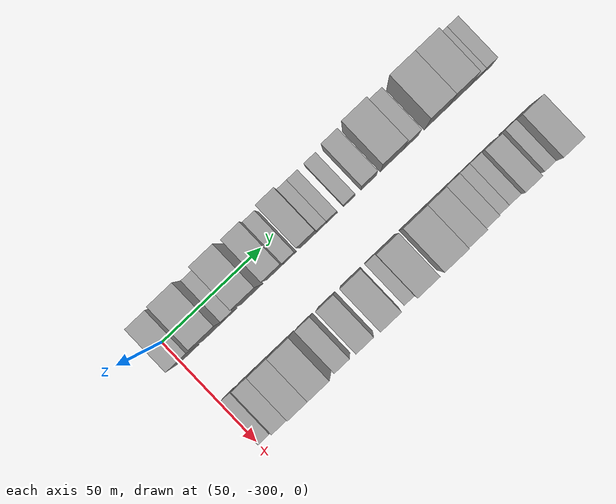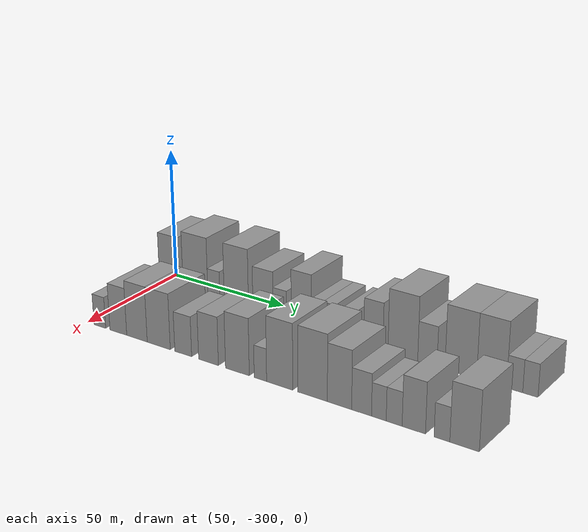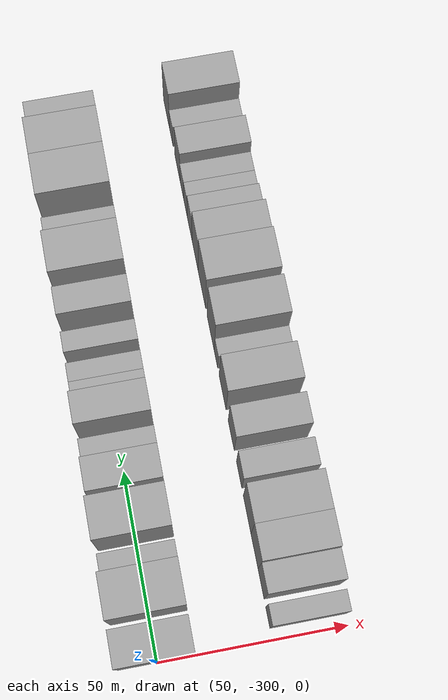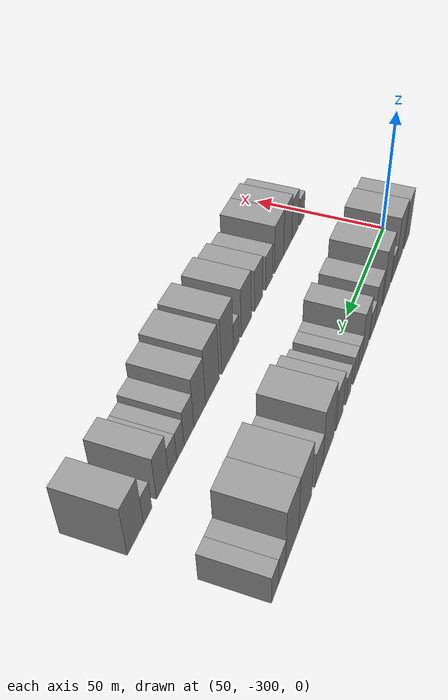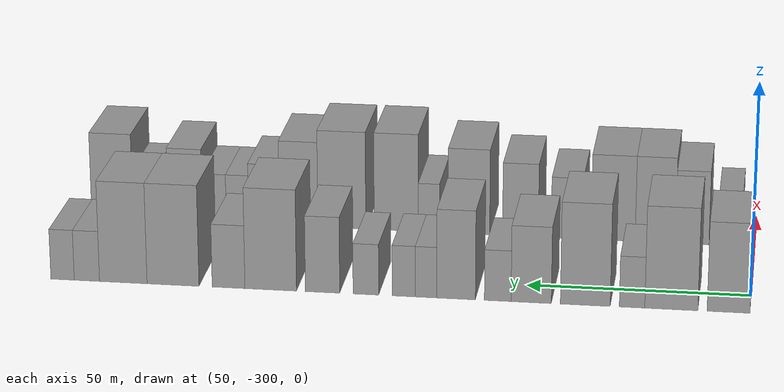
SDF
<sdf version="1.6">
 <world name="default">
  <model name="building_1">
   <static>1</static>
   <pose>50.0000 -295.3175 0 0.000000 0.000000 0.000000</pose>
   <link name="link">
    <pose>0 0 10.50 0 0 0</pose>
    <collision name="collision"><geometry><box><size>20.0000 9.3650 21.0000</size></box></geometry></collision>
    <visual name="visual">
     <cast_shadows>0</cast_shadows>
     <geometry><box><size>20.0000 9.3650 21.0000</size></box></geometry>
     <material>
      <script>
       <uri>model://grey_wall/materials/scripts</uri>
       <uri>model://grey_wall/materials/textures</uri>
       <name>vrc/grey_wall</name>
      </script>
     </material>
    </visual>
   </link>
  </model>
  <model name="building_2">
   <static>1</static>
   <pose>50.0000 -282.8107 0 0.000000 0.000000 0.000000</pose>
   <link name="link">
    <pose>0 0 12.00 0 0 0</pose>
    <collision name="collision"><geometry><box><size>20.0000 11.6486 24.0000</size></box></geometry></collision>
    <visual name="visual">
     <cast_shadows>0</cast_shadows>
     <geometry><box><size>20.0000 11.6486 24.0000</size></box></geometry>
     <material>
      <script>
       <uri>model://grey_wall/materials/scripts</uri>
       <uri>model://grey_wall/materials/textures</uri>
       <name>vrc/grey_wall</name>
      </script>
     </material>
    </visual>
   </link>
  </model>
  <model name="building_3">
   <static>1</static>
   <pose>50.0000 -274.1890 0 0.000000 0.000000 0.000000</pose>
   <link name="link">
    <pose>0 0 6.00 0 0 0</pose>
    <collision name="collision"><geometry><box><size>20.0000 5.5949 12.0000</size></box></geometry></collision>
    <visual name="visual">
     <cast_shadows>0</cast_shadows>
     <geometry><box><size>20.0000 5.5949 12.0000</size></box></geometry>
     <material>
      <script>
       <uri>model://grey_wall/materials/scripts</uri>
       <uri>model://grey_wall/materials/textures</uri>
       <name>vrc/grey_wall</name>
      </script>
     </material>
    </visual>
   </link>
  </model>
  <model name="building_4">
   <static>1</static>
   <pose>50.0000 -263.8913 0 0.000000 0.000000 0.000000</pose>
   <link name="link">
    <pose>0 0 12.00 0 0 0</pose>
    <collision name="collision"><geometry><box><size>20.0000 11.0005 24.0000</size></box></geometry></collision>
    <visual name="visual">
     <cast_shadows>0</cast_shadows>
     <geometry><box><size>20.0000 11.0005 24.0000</size></box></geometry>
     <material>
      <script>
       <uri>model://grey_wall/materials/scripts</uri>
       <uri>model://grey_wall/materials/textures</uri>
       <name>vrc/grey_wall</name>
      </script>
     </material>
    </visual>
   </link>
  </model>
  <model name="building_5">
   <static>1</static>
   <pose>50.0000 -251.9345 0 0.000000 0.000000 0.000000</pose>
   <link name="link">
    <pose>0 0 9.00 0 0 0</pose>
    <collision name="collision"><geometry><box><size>20.0000 8.9130 18.0000</size></box></geometry></collision>
    <visual name="visual">
     <cast_shadows>0</cast_shadows>
     <geometry><box><size>20.0000 8.9130 18.0000</size></box></geometry>
     <material>
      <script>
       <uri>model://grey_wall/materials/scripts</uri>
       <uri>model://grey_wall/materials/textures</uri>
       <name>vrc/grey_wall</name>
      </script>
     </material>
    </visual>
   </link>
  </model>
  <model name="building_6">
   <static>1</static>
   <pose>50.0000 -244.5130 0 0.000000 0.000000 0.000000</pose>
   <link name="link">
    <pose>0 0 6.00 0 0 0</pose>
    <collision name="collision"><geometry><box><size>20.0000 5.9301 12.0000</size></box></geometry></collision>
    <visual name="visual">
     <cast_shadows>0</cast_shadows>
     <geometry><box><size>20.0000 5.9301 12.0000</size></box></geometry>
     <material>
      <script>
       <uri>model://grey_wall/materials/scripts</uri>
       <uri>model://grey_wall/materials/textures</uri>
       <name>vrc/grey_wall</name>
      </script>
     </material>
    </visual>
   </link>
  </model>
  <model name="building_7">
   <static>1</static>
   <pose>50.0000 -235.2398 0 0.000000 0.000000 0.000000</pose>
   <link name="link">
    <pose>0 0 10.50 0 0 0</pose>
    <collision name="collision"><geometry><box><size>20.0000 8.6164 21.0000</size></box></geometry></collision>
    <visual name="visual">
     <cast_shadows>0</cast_shadows>
     <geometry><box><size>20.0000 8.6164 21.0000</size></box></geometry>
     <material>
      <script>
       <uri>model://grey_wall/materials/scripts</uri>
       <uri>model://grey_wall/materials/textures</uri>
       <name>vrc/grey_wall</name>
      </script>
     </material>
    </visual>
   </link>
  </model>
  <model name="building_8">
   <static>1</static>
   <pose>50.0000 -228.5288 0 0.000000 0.000000 0.000000</pose>
   <link name="link">
    <pose>0 0 6.00 0 0 0</pose>
    <collision name="collision"><geometry><box><size>20.0000 4.8055 12.0000</size></box></geometry></collision>
    <visual name="visual">
     <cast_shadows>0</cast_shadows>
     <geometry><box><size>20.0000 4.8055 12.0000</size></box></geometry>
     <material>
      <script>
       <uri>model://grey_wall/materials/scripts</uri>
       <uri>model://grey_wall/materials/textures</uri>
       <name>vrc/grey_wall</name>
      </script>
     </material>
    </visual>
   </link>
  </model>
  <model name="building_9">
   <static>1</static>
   <pose>50.0000 -223.5332 0 0.000000 0.000000 0.000000</pose>
   <link name="link">
    <pose>0 0 6.00 0 0 0</pose>
    <collision name="collision"><geometry><box><size>20.0000 5.1856 12.0000</size></box></geometry></collision>
    <visual name="visual">
     <cast_shadows>0</cast_shadows>
     <geometry><box><size>20.0000 5.1856 12.0000</size></box></geometry>
     <material>
      <script>
       <uri>model://grey_wall/materials/scripts</uri>
       <uri>model://grey_wall/materials/textures</uri>
       <name>vrc/grey_wall</name>
      </script>
     </material>
    </visual>
   </link>
  </model>
  <model name="building_10">
   <static>1</static>
   <pose>50.0000 -215.0682 0 0.000000 0.000000 0.000000</pose>
   <link name="link">
    <pose>0 0 6.00 0 0 0</pose>
    <collision name="collision"><geometry><box><size>20.0000 5.7443 12.0000</size></box></geometry></collision>
    <visual name="visual">
     <cast_shadows>0</cast_shadows>
     <geometry><box><size>20.0000 5.7443 12.0000</size></box></geometry>
     <material>
      <script>
       <uri>model://grey_wall/materials/scripts</uri>
       <uri>model://grey_wall/materials/textures</uri>
       <name>vrc/grey_wall</name>
      </script>
     </material>
    </visual>
   </link>
  </model>
  <model name="building_11">
   <static>1</static>
   <pose>50.0000 -205.3281 0 0.000000 0.000000 0.000000</pose>
   <link name="link">
    <pose>0 0 9.00 0 0 0</pose>
    <collision name="collision"><geometry><box><size>20.0000 7.7359 18.0000</size></box></geometry></collision>
    <visual name="visual">
     <cast_shadows>0</cast_shadows>
     <geometry><box><size>20.0000 7.7359 18.0000</size></box></geometry>
     <material>
      <script>
       <uri>model://grey_wall/materials/scripts</uri>
       <uri>model://grey_wall/materials/textures</uri>
       <name>vrc/grey_wall</name>
      </script>
     </material>
    </visual>
   </link>
  </model>
  <model name="building_12">
   <static>1</static>
   <pose>50.0000 -193.6278 0 0.000000 0.000000 0.000000</pose>
   <link name="link">
    <pose>0 0 12.00 0 0 0</pose>
    <collision name="collision"><geometry><box><size>20.0000 11.6648 24.0000</size></box></geometry></collision>
    <visual name="visual">
     <cast_shadows>0</cast_shadows>
     <geometry><box><size>20.0000 11.6648 24.0000</size></box></geometry>
     <material>
      <script>
       <uri>model://grey_wall/materials/scripts</uri>
       <uri>model://grey_wall/materials/textures</uri>
       <name>vrc/grey_wall</name>
      </script>
     </material>
    </visual>
   </link>
  </model>
  <model name="building_13">
   <static>1</static>
   <pose>50.0000 -184.0830 0 0.000000 0.000000 0.000000</pose>
   <link name="link">
    <pose>0 0 7.50 0 0 0</pose>
    <collision name="collision"><geometry><box><size>20.0000 7.4248 15.0000</size></box></geometry></collision>
    <visual name="visual">
     <cast_shadows>0</cast_shadows>
     <geometry><box><size>20.0000 7.4248 15.0000</size></box></geometry>
     <material>
      <script>
       <uri>model://grey_wall/materials/scripts</uri>
       <uri>model://grey_wall/materials/textures</uri>
       <name>vrc/grey_wall</name>
      </script>
     </material>
    </visual>
   </link>
  </model>
  <model name="building_14">
   <static>1</static>
   <pose>50.0000 -171.4516 0 0.000000 0.000000 0.000000</pose>
   <link name="link">
    <pose>0 0 12.00 0 0 0</pose>
    <collision name="collision"><geometry><box><size>20.0000 11.8380 24.0000</size></box></geometry></collision>
    <visual name="visual">
     <cast_shadows>0</cast_shadows>
     <geometry><box><size>20.0000 11.8380 24.0000</size></box></geometry>
     <material>
      <script>
       <uri>model://grey_wall/materials/scripts</uri>
       <uri>model://grey_wall/materials/textures</uri>
       <name>vrc/grey_wall</name>
      </script>
     </material>
    </visual>
   </link>
  </model>
  <model name="building_15">
   <static>1</static>
   <pose>50.0000 -160.0924 0 0.000000 0.000000 0.000000</pose>
   <link name="link">
    <pose>0 0 12.00 0 0 0</pose>
    <collision name="collision"><geometry><box><size>20.0000 10.8804 24.0000</size></box></geometry></collision>
    <visual name="visual">
     <cast_shadows>0</cast_shadows>
     <geometry><box><size>20.0000 10.8804 24.0000</size></box></geometry>
     <material>
      <script>
       <uri>model://grey_wall/materials/scripts</uri>
       <uri>model://grey_wall/materials/textures</uri>
       <name>vrc/grey_wall</name>
      </script>
     </material>
    </visual>
   </link>
  </model>
  <model name="building_16">
   <static>1</static>
   <pose>50.0000 -151.7578 0 0.000000 0.000000 0.000000</pose>
   <link name="link">
    <pose>0 0 6.00 0 0 0</pose>
    <collision name="collision"><geometry><box><size>20.0000 5.7887 12.0000</size></box></geometry></collision>
    <visual name="visual">
     <cast_shadows>0</cast_shadows>
     <geometry><box><size>20.0000 5.7887 12.0000</size></box></geometry>
     <material>
      <script>
       <uri>model://grey_wall/materials/scripts</uri>
       <uri>model://grey_wall/materials/textures</uri>
       <name>vrc/grey_wall</name>
      </script>
     </material>
    </visual>
   </link>
  </model>
  <model name="building_17">
   <static>1</static>
   <pose>50.0000 -146.1758 0 0.000000 0.000000 0.000000</pose>
   <link name="link">
    <pose>0 0 6.00 0 0 0</pose>
    <collision name="collision"><geometry><box><size>20.0000 5.3753 12.0000</size></box></geometry></collision>
    <visual name="visual">
     <cast_shadows>0</cast_shadows>
     <geometry><box><size>20.0000 5.3753 12.0000</size></box></geometry>
     <material>
      <script>
       <uri>model://grey_wall/materials/scripts</uri>
       <uri>model://grey_wall/materials/textures</uri>
       <name>vrc/grey_wall</name>
      </script>
     </material>
    </visual>
   </link>
  </model>
  <model name="building_69">
   <static>1</static>
   <pose>90.0000 -294.2524 0 0.000000 0.000000 0.000000</pose>
   <link name="link">
    <pose>0 0 6.00 0 0 0</pose>
    <collision name="collision"><geometry><box><size>20.0000 5.4952 12.0000</size></box></geometry></collision>
    <visual name="visual">
     <cast_shadows>0</cast_shadows>
     <geometry><box><size>20.0000 5.4952 12.0000</size></box></geometry>
     <material>
      <script>
       <uri>model://grey_wall/materials/scripts</uri>
       <uri>model://grey_wall/materials/textures</uri>
       <name>vrc/grey_wall</name>
      </script>
     </material>
    </visual>
   </link>
  </model>
  <model name="building_70">
   <static>1</static>
   <pose>90.0000 -285.6270 0 0.000000 0.000000 0.000000</pose>
   <link name="link">
    <pose>0 0 9.00 0 0 0</pose>
    <collision name="collision"><geometry><box><size>20.0000 7.7557 18.0000</size></box></geometry></collision>
    <visual name="visual">
     <cast_shadows>0</cast_shadows>
     <geometry><box><size>20.0000 7.7557 18.0000</size></box></geometry>
     <material>
      <script>
       <uri>model://grey_wall/materials/scripts</uri>
       <uri>model://grey_wall/materials/textures</uri>
       <name>vrc/grey_wall</name>
      </script>
     </material>
    </visual>
   </link>
  </model>
  <model name="building_71">
   <static>1</static>
   <pose>90.0000 -277.0891 0 0.000000 0.000000 0.000000</pose>
   <link name="link">
    <pose>0 0 10.50 0 0 0</pose>
    <collision name="collision"><geometry><box><size>20.0000 9.3201 21.0000</size></box></geometry></collision>
    <visual name="visual">
     <cast_shadows>0</cast_shadows>
     <geometry><box><size>20.0000 9.3201 21.0000</size></box></geometry>
     <material>
      <script>
       <uri>model://grey_wall/materials/scripts</uri>
       <uri>model://grey_wall/materials/textures</uri>
       <name>vrc/grey_wall</name>
      </script>
     </material>
    </visual>
   </link>
  </model>
  <model name="building_72">
   <static>1</static>
   <pose>90.0000 -267.3088 0 0.000000 0.000000 0.000000</pose>
   <link name="link">
    <pose>0 0 10.50 0 0 0</pose>
    <collision name="collision"><geometry><box><size>20.0000 10.2406 21.0000</size></box></geometry></collision>
    <visual name="visual">
     <cast_shadows>0</cast_shadows>
     <geometry><box><size>20.0000 10.2406 21.0000</size></box></geometry>
     <material>
      <script>
       <uri>model://grey_wall/materials/scripts</uri>
       <uri>model://grey_wall/materials/textures</uri>
       <name>vrc/grey_wall</name>
      </script>
     </material>
    </visual>
   </link>
  </model>
  <model name="building_73">
   <static>1</static>
   <pose>90.0000 -256.5324 0 0.000000 0.000000 0.000000</pose>
   <link name="link">
    <pose>0 0 7.50 0 0 0</pose>
    <collision name="collision"><geometry><box><size>20.0000 7.3120 15.0000</size></box></geometry></collision>
    <visual name="visual">
     <cast_shadows>0</cast_shadows>
     <geometry><box><size>20.0000 7.3120 15.0000</size></box></geometry>
     <material>
      <script>
       <uri>model://grey_wall/materials/scripts</uri>
       <uri>model://grey_wall/materials/textures</uri>
       <name>vrc/grey_wall</name>
      </script>
     </material>
    </visual>
   </link>
  </model>
  <model name="building_74">
   <static>1</static>
   <pose>90.0000 -245.6885 0 0.000000 0.000000 0.000000</pose>
   <link name="link">
    <pose>0 0 9.00 0 0 0</pose>
    <collision name="collision"><geometry><box><size>20.0000 8.3760 18.0000</size></box></geometry></collision>
    <visual name="visual">
     <cast_shadows>0</cast_shadows>
     <geometry><box><size>20.0000 8.3760 18.0000</size></box></geometry>
     <material>
      <script>
       <uri>model://grey_wall/materials/scripts</uri>
       <uri>model://grey_wall/materials/textures</uri>
       <name>vrc/grey_wall</name>
      </script>
     </material>
    </visual>
   </link>
  </model>
  <model name="building_75">
   <static>1</static>
   <pose>90.0000 -233.5897 0 0.000000 0.000000 0.000000</pose>
   <link name="link">
    <pose>0 0 10.50 0 0 0</pose>
    <collision name="collision"><geometry><box><size>20.0000 9.8216 21.0000</size></box></geometry></collision>
    <visual name="visual">
     <cast_shadows>0</cast_shadows>
     <geometry><box><size>20.0000 9.8216 21.0000</size></box></geometry>
     <material>
      <script>
       <uri>model://grey_wall/materials/scripts</uri>
       <uri>model://grey_wall/materials/textures</uri>
       <name>vrc/grey_wall</name>
      </script>
     </material>
    </visual>
   </link>
  </model>
  <model name="building_76">
   <static>1</static>
   <pose>90.0000 -224.1726 0 0.000000 0.000000 0.000000</pose>
   <link name="link">
    <pose>0 0 6.00 0 0 0</pose>
    <collision name="collision"><geometry><box><size>20.0000 5.0125 12.0000</size></box></geometry></collision>
    <visual name="visual">
     <cast_shadows>0</cast_shadows>
     <geometry><box><size>20.0000 5.0125 12.0000</size></box></geometry>
     <material>
      <script>
       <uri>model://grey_wall/materials/scripts</uri>
       <uri>model://grey_wall/materials/textures</uri>
       <name>vrc/grey_wall</name>
      </script>
     </material>
    </visual>
   </link>
  </model>
  <model name="building_77">
   <static>1</static>
   <pose>90.0000 -216.4661 0 0.000000 0.000000 0.000000</pose>
   <link name="link">
    <pose>0 0 12.00 0 0 0</pose>
    <collision name="collision"><geometry><box><size>20.0000 10.4005 24.0000</size></box></geometry></collision>
    <visual name="visual">
     <cast_shadows>0</cast_shadows>
     <geometry><box><size>20.0000 10.4005 24.0000</size></box></geometry>
     <material>
      <script>
       <uri>model://grey_wall/materials/scripts</uri>
       <uri>model://grey_wall/materials/textures</uri>
       <name>vrc/grey_wall</name>
      </script>
     </material>
    </visual>
   </link>
  </model>
  <model name="building_78">
   <static>1</static>
   <pose>90.0000 -203.5819 0 0.000000 0.000000 0.000000</pose>
   <link name="link">
    <pose>0 0 12.00 0 0 0</pose>
    <collision name="collision"><geometry><box><size>20.0000 11.3679 24.0000</size></box></geometry></collision>
    <visual name="visual">
     <cast_shadows>0</cast_shadows>
     <geometry><box><size>20.0000 11.3679 24.0000</size></box></geometry>
     <material>
      <script>
       <uri>model://grey_wall/materials/scripts</uri>
       <uri>model://grey_wall/materials/textures</uri>
       <name>vrc/grey_wall</name>
      </script>
     </material>
    </visual>
   </link>
  </model>
  <model name="building_79">
   <static>1</static>
   <pose>90.0000 -193.3113 0 0.000000 0.000000 0.000000</pose>
   <link name="link">
    <pose>0 0 10.50 0 0 0</pose>
    <collision name="collision"><geometry><box><size>20.0000 9.1733 21.0000</size></box></geometry></collision>
    <visual name="visual">
     <cast_shadows>0</cast_shadows>
     <geometry><box><size>20.0000 9.1733 21.0000</size></box></geometry>
     <material>
      <script>
       <uri>model://grey_wall/materials/scripts</uri>
       <uri>model://grey_wall/materials/textures</uri>
       <name>vrc/grey_wall</name>
      </script>
     </material>
    </visual>
   </link>
  </model>
  <model name="building_80">
   <static>1</static>
   <pose>90.0000 -185.0576 0 0.000000 0.000000 0.000000</pose>
   <link name="link">
    <pose>0 0 7.50 0 0 0</pose>
    <collision name="collision"><geometry><box><size>20.0000 7.3341 15.0000</size></box></geometry></collision>
    <visual name="visual">
     <cast_shadows>0</cast_shadows>
     <geometry><box><size>20.0000 7.3341 15.0000</size></box></geometry>
     <material>
      <script>
       <uri>model://grey_wall/materials/scripts</uri>
       <uri>model://grey_wall/materials/textures</uri>
       <name>vrc/grey_wall</name>
      </script>
     </material>
    </visual>
   </link>
  </model>
  <model name="building_81">
   <static>1</static>
   <pose>90.0000 -178.7155 0 0.000000 0.000000 0.000000</pose>
   <link name="link">
    <pose>0 0 6.00 0 0 0</pose>
    <collision name="collision"><geometry><box><size>20.0000 5.3502 12.0000</size></box></geometry></collision>
    <visual name="visual">
     <cast_shadows>0</cast_shadows>
     <geometry><box><size>20.0000 5.3502 12.0000</size></box></geometry>
     <material>
      <script>
       <uri>model://grey_wall/materials/scripts</uri>
       <uri>model://grey_wall/materials/textures</uri>
       <name>vrc/grey_wall</name>
      </script>
     </material>
    </visual>
   </link>
  </model>
  <model name="building_82">
   <static>1</static>
   <pose>90.0000 -173.1819 0 0.000000 0.000000 0.000000</pose>
   <link name="link">
    <pose>0 0 6.00 0 0 0</pose>
    <collision name="collision"><geometry><box><size>20.0000 5.7169 12.0000</size></box></geometry></collision>
    <visual name="visual">
     <cast_shadows>0</cast_shadows>
     <geometry><box><size>20.0000 5.7169 12.0000</size></box></geometry>
     <material>
      <script>
       <uri>model://grey_wall/materials/scripts</uri>
       <uri>model://grey_wall/materials/textures</uri>
       <name>vrc/grey_wall</name>
      </script>
     </material>
    </visual>
   </link>
  </model>
  <model name="building_83">
   <static>1</static>
   <pose>90.0000 -166.1956 0 0.000000 0.000000 0.000000</pose>
   <link name="link">
    <pose>0 0 9.00 0 0 0</pose>
    <collision name="collision"><geometry><box><size>20.0000 8.2558 18.0000</size></box></geometry></collision>
    <visual name="visual">
     <cast_shadows>0</cast_shadows>
     <geometry><box><size>20.0000 8.2558 18.0000</size></box></geometry>
     <material>
      <script>
       <uri>model://grey_wall/materials/scripts</uri>
       <uri>model://grey_wall/materials/textures</uri>
       <name>vrc/grey_wall</name>
      </script>
     </material>
    </visual>
   </link>
  </model>
  <model name="building_84">
   <static>1</static>
   <pose>90.0000 -156.3511 0 0.000000 0.000000 0.000000</pose>
   <link name="link">
    <pose>0 0 6.00 0 0 0</pose>
    <collision name="collision"><geometry><box><size>20.0000 5.4332 12.0000</size></box></geometry></collision>
    <visual name="visual">
     <cast_shadows>0</cast_shadows>
     <geometry><box><size>20.0000 5.4332 12.0000</size></box></geometry>
     <material>
      <script>
       <uri>model://grey_wall/materials/scripts</uri>
       <uri>model://grey_wall/materials/textures</uri>
       <name>vrc/grey_wall</name>
      </script>
     </material>
    </visual>
   </link>
  </model>
  <model name="building_85">
   <static>1</static>
   <pose>90.0000 -148.6413 0 0.000000 0.000000 0.000000</pose>
   <link name="link">
    <pose>0 0 10.50 0 0 0</pose>
    <collision name="collision"><geometry><box><size>20.0000 9.9862 21.0000</size></box></geometry></collision>
    <visual name="visual">
     <cast_shadows>0</cast_shadows>
     <geometry><box><size>20.0000 9.9862 21.0000</size></box></geometry>
     <material>
      <script>
       <uri>model://grey_wall/materials/scripts</uri>
       <uri>model://grey_wall/materials/textures</uri>
       <name>vrc/grey_wall</name>
      </script>
     </material>
    </visual>
   </link>
  </model>
 </world>
</sdf>
